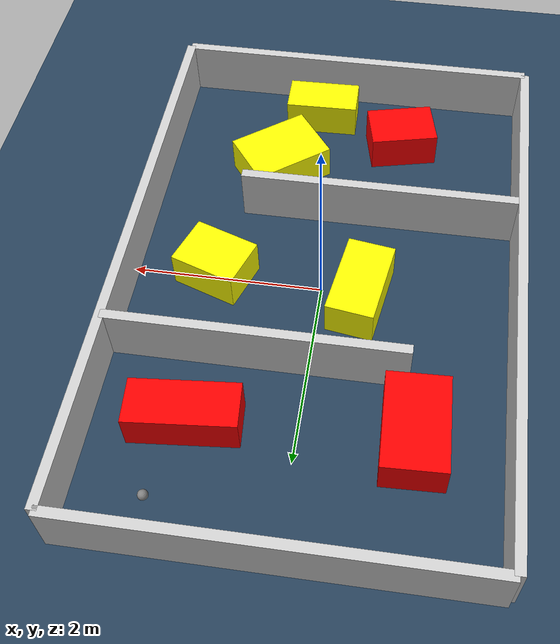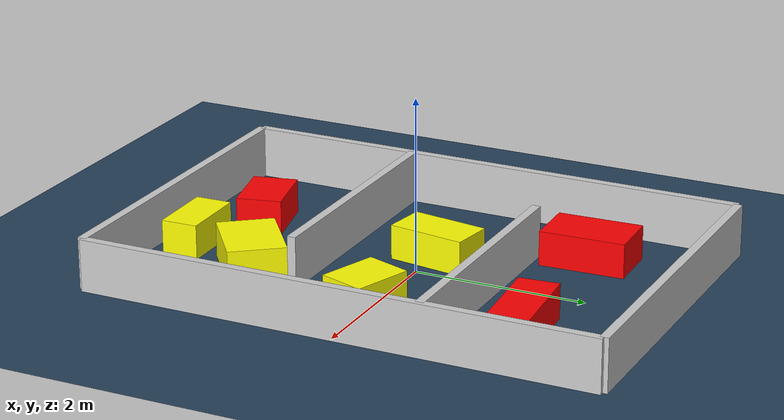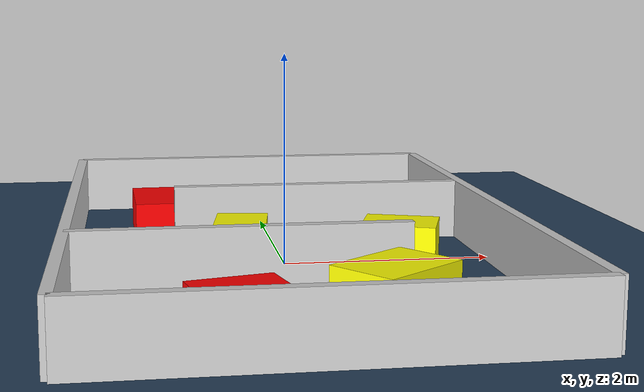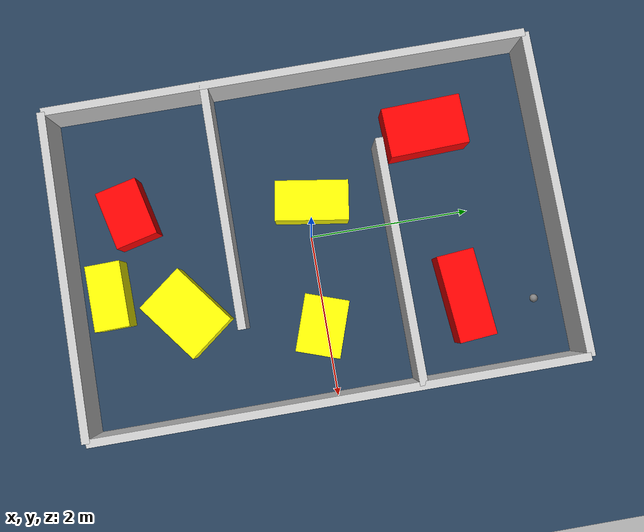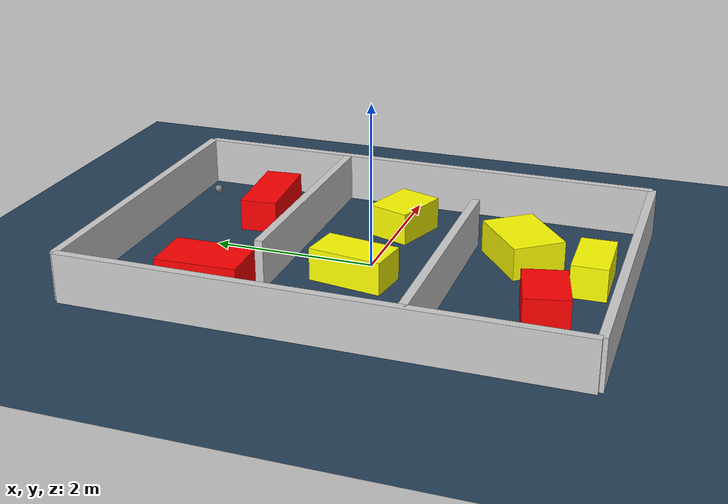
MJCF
<?xml version="1.0" ?>
<mujoco model="generated_environment">
  <option timestep="0.01" integrator="RK4" cone="elliptic"/>
  <default>
    <geom density="1"/>
  </default>
  <asset>
    <texture builtin="gradient" height="3072" rgb1="0.3 0.5 0.7" rgb2="0 0 0" type="skybox" width="512"/>
    <texture builtin="checker" height="300" mark="edge" markrgb="0.8 0.8 0.8" name="groundplane" rgb1="0.2 0.3 0.4" rgb2="0.1 0.2 0.3" type="2d" width="300"/>
    <material name="groundplane" reflectance="0.2" texrepeat="5 5" texture="groundplane" texuniform="true"/>
    <material name="robot" rgba="0.0 1.0 0.0 1"/>
  </asset>
  <worldbody>
    <light dir="0 0 -1" directional="true" pos="0 0 1.5"/>
    <geom condim="4" friction="1.0 0.005 0.001" material="groundplane" name="floor" size="0 0 0.05" type="plane"/>
    <body name="walls">
      <geom name="wall_1" condim="4" pos="-2.0 0.0 0.3" rgba="0.800000011920929 0.800000011920929 0.800000011920929 1.0" size="0.05 3.0 0.3" type="box"/>
      <geom name="wall_2" condim="4" pos="2.0 0.0 0.3" rgba="0.800000011920929 0.800000011920929 0.800000011920929 1.0" size="0.05 3.0 0.3" type="box"/>
      <geom name="wall_3" condim="4" pos="0.0 -3.0 0.3" rgba="0.800000011920929 0.800000011920929 0.800000011920929 1.0" size="2.0 0.05 0.3" type="box"/>
      <geom name="wall_4" condim="4" pos="0.0 3.0 0.3" rgba="0.800000011920929 0.800000011920929 0.800000011920929 1.0" size="2.0 0.05 0.3" type="box"/>
      <geom name="wall_5" condim="4" pos="-0.5 -1.0 0.3" rgba="0.800000011920929 0.800000011920929 0.800000011920929 1.0" size="1.5 0.05 0.3" type="box"/>
      <geom name="wall_6" condim="4" pos="0.5 1.0 0.3" rgba="0.800000011920929 0.800000011920929 0.800000011920929 1.0" size="1.5 0.05 0.3" type="box"/>
    </body>
    <body name="robot">
      <joint name="joint_x" type="slide" pos="0 0 0" axis="1 0 0"/>
      <joint name="joint_y" type="slide" pos="0 0 0" axis="0 1 0"/>
      <geom name="robot" type="sphere" pos="1.2231269592839067 2.5744773399990613 0.2" size="0.05" mass="5." friction="1.0 0.005 0.0001" condim="4"/>
      <site name="sensor_ball"/>
    </body>
    <body name="obstacle_1_static">
      <geom name="obstacle_1_static" condim="4" pos="-0.6343142500317649 -2.1963053238430494 0.2" euler="0 0 283.34840281414654" friction="1.0 0.005 0.001" rgba="1 0 0 1" size="0.26161065745996503 0.3688630316360877 0.2" type="box"/>
    </body>
    <body name="obstacle_2_movable">
      <geom name="obstacle_2_movable" condim="4" pos="-0.4126678886473061 0.07392153950649849 0.2" euler="0 0 81.28633233075259" friction="1.0 0.005 0.001" rgba="1 1 0 1" size="0.4542137301817131 0.24957305805428953 0.2" type="box" mass="0.1"/>
      <joint type="free"/>
    </body>
    <body name="obstacle_3_movable">
      <geom name="obstacle_3_movable" condim="4" pos="0.6927099613569223 -1.664794229392109 0.2" euler="0 0 127.53328902239262" friction="1.0 0.005 0.001" rgba="1 1 0 1" size="0.32980426928434825 0.4490576300232091 0.2" type="box" mass="0.1"/>
      <joint type="free"/>
    </body>
    <body name="obstacle_4_static">
      <geom name="obstacle_4_static" condim="4" pos="1.0499382370225658 1.729719233879667 0.2" euler="0 0 274.9534904478248" friction="1.0 0.005 0.001" rgba="1 0 0 1" size="0.23169904600523125 0.5381024874109834 0.2" type="box"/>
    </body>
    <body name="obstacle_5_static">
      <geom name="obstacle_5_static" condim="4" pos="-1.0962723478729894 1.6186940669722372 0.2" euler="0 0 272.0018724533572" friction="1.0 0.005 0.001" rgba="1 0 0 1" size="0.49459442691992767 0.3124328681784686 0.2" type="box"/>
    </body>
    <body name="obstacle_6_movable">
      <geom name="obstacle_6_movable" condim="4" pos="1.1199365677102575 -0.0538955748479486 0.2" euler="0 0 340.8074104870779" friction="1.0 0.005 0.001" rgba="1 1 0 1" size="0.3534893603482706 0.2732125115263702 0.2" type="box" mass="0.1"/>
      <joint type="free"/>
    </body>
    <body name="obstacle_7_movable">
      <geom name="obstacle_7_movable" condim="4" pos="0.3303454787443758 -2.5658475670533076 0.2" euler="0 0 181.22531741228184" friction="1.0 0.005 0.001" rgba="1 1 0 1" size="0.4039125385011898 0.21399859910872476 0.2" type="box" mass="0.1"/>
      <joint type="free"/>
    </body>
  </worldbody>
  <actuator>
    <motor name="actuator_x" joint="joint_x" gear="1" ctrlrange="-1 1"/>
    <motor name="actuator_y" joint="joint_y" gear="1" ctrlrange="-1 1"/>
  </actuator>
</mujoco>
